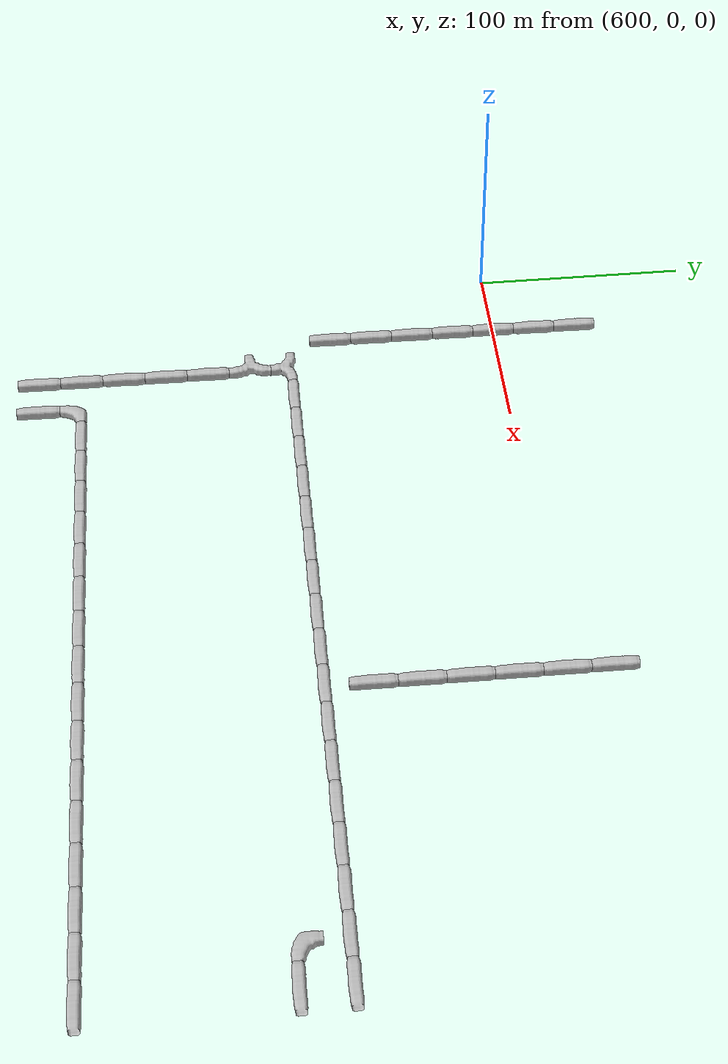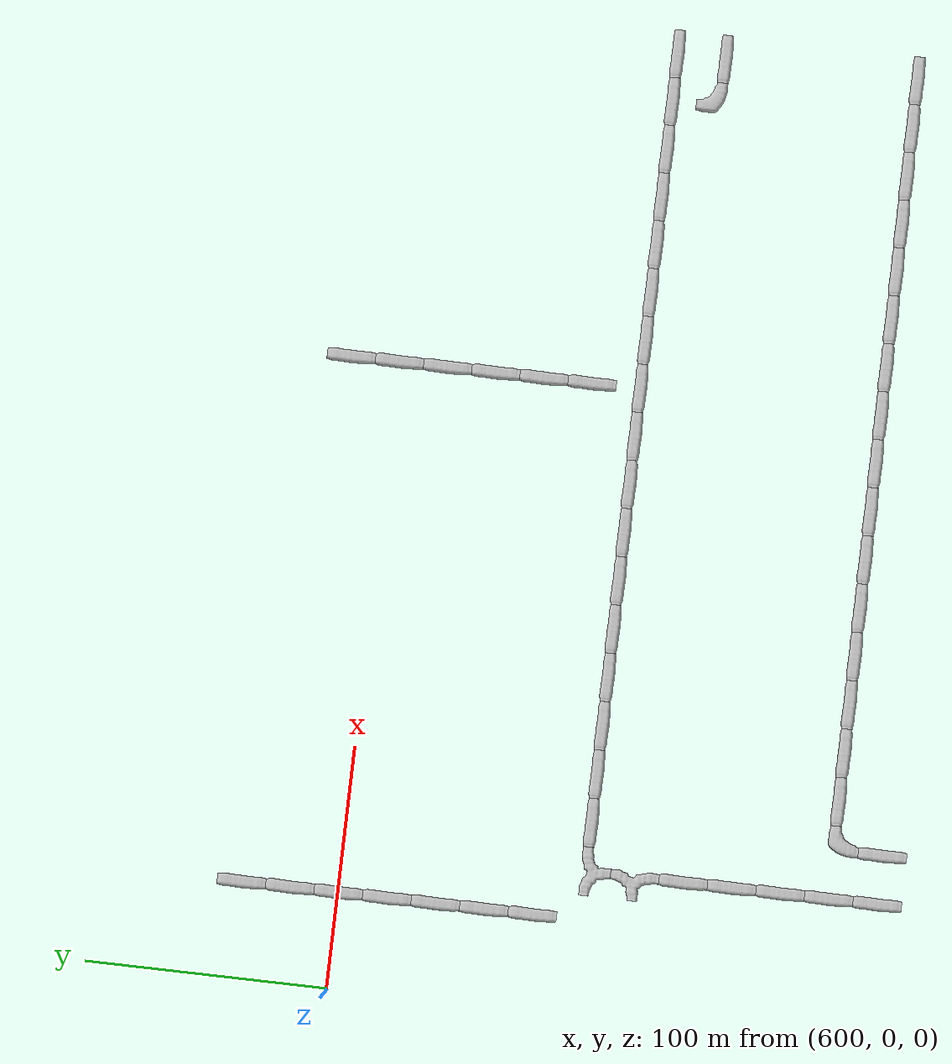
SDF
<sdf version="1.6">
 <world name="cave_32000_32">
  <include>
   <static>true</static>
   <name>cave_33_-6</name>
   <pose>660 -120 0 0 0 1.5707963267948966</pose>
   <uri>model://cave_3way_20m</uri>
  </include>
  <include>
   <static>true</static>
   <name>cave_33_-7</name>
   <pose>660 -140 0 0 0 0.0</pose>
   <uri>model://cave_straight_20m</uri>
  </include>
  <include>
   <static>true</static>
   <name>cave_33_-8</name>
   <pose>660 -160 0 0 0 0.0</pose>
   <uri>model://cave_straight_20m</uri>
  </include>
  <include>
   <static>true</static>
   <name>cave_33_-9</name>
   <pose>660 -180 0 0 0 0.0</pose>
   <uri>model://cave_straight_20m</uri>
  </include>
  <include>
   <static>true</static>
   <name>cave_33_-10</name>
   <pose>660 -200 0 0 0 0.0</pose>
   <uri>model://cave_straight_20m</uri>
  </include>
  <include>
   <static>true</static>
   <name>cave_33_-11</name>
   <pose>660 -220 0 0 0 0.0</pose>
   <uri>model://cave_straight_20m</uri>
  </include>
  <include>
   <static>true</static>
   <name>cave_33_-5</name>
   <pose>660 -100 0 0 0 3.141592653589793</pose>
   <uri>model://cave_3way_20m</uri>
  </include>
  <include>
   <static>true</static>
   <name>cave_34_-5</name>
   <pose>680 -100 0 0 0 1.5707963267948966</pose>
   <uri>model://cave_straight_20m</uri>
  </include>
  <include>
   <static>true</static>
   <name>cave_35_-5</name>
   <pose>700 -100 0 0 0 1.5707963267948966</pose>
   <uri>model://cave_straight_20m</uri>
  </include>
  <include>
   <static>true</static>
   <name>cave_36_-5</name>
   <pose>720 -100 0 0 0 1.5707963267948966</pose>
   <uri>model://cave_straight_20m</uri>
  </include>
  <include>
   <static>true</static>
   <name>cave_37_-5</name>
   <pose>740 -100 0 0 0 1.5707963267948966</pose>
   <uri>model://cave_straight_20m</uri>
  </include>
  <include>
   <static>true</static>
   <name>cave_38_-5</name>
   <pose>760 -100 0 0 0 1.5707963267948966</pose>
   <uri>model://cave_straight_20m</uri>
  </include>
  <include>
   <static>true</static>
   <name>cave_39_-5</name>
   <pose>780 -100 0 0 0 1.5707963267948966</pose>
   <uri>model://cave_straight_20m</uri>
  </include>
  <include>
   <static>true</static>
   <name>cave_40_-5</name>
   <pose>800 -100 0 0 0 1.5707963267948966</pose>
   <uri>model://cave_straight_20m</uri>
  </include>
  <include>
   <static>true</static>
   <name>cave_41_-5</name>
   <pose>820 -100 0 0 0 1.5707963267948966</pose>
   <uri>model://cave_straight_20m</uri>
  </include>
  <include>
   <static>true</static>
   <name>cave_42_-5</name>
   <pose>840 -100 0 0 0 1.5707963267948966</pose>
   <uri>model://cave_straight_20m</uri>
  </include>
  <include>
   <static>true</static>
   <name>cave_43_-5</name>
   <pose>860 -100 0 0 0 1.5707963267948966</pose>
   <uri>model://cave_straight_20m</uri>
  </include>
  <include>
   <static>true</static>
   <name>cave_44_-5</name>
   <pose>880 -100 0 0 0 1.5707963267948966</pose>
   <uri>model://cave_straight_20m</uri>
  </include>
  <include>
   <static>true</static>
   <name>cave_45_-5</name>
   <pose>900 -100 0 0 0 1.5707963267948966</pose>
   <uri>model://cave_straight_20m</uri>
  </include>
  <include>
   <static>true</static>
   <name>cave_46_-5</name>
   <pose>920 -100 0 0 0 1.5707963267948966</pose>
   <uri>model://cave_straight_20m</uri>
  </include>
  <include>
   <static>true</static>
   <name>cave_47_-5</name>
   <pose>940 -100 0 0 0 1.5707963267948966</pose>
   <uri>model://cave_straight_20m</uri>
  </include>
  <include>
   <static>true</static>
   <name>cave_48_-5</name>
   <pose>960 -100 0 0 0 1.5707963267948966</pose>
   <uri>model://cave_straight_20m</uri>
  </include>
  <include>
   <static>true</static>
   <name>cave_49_-5</name>
   <pose>980 -100 0 0 0 1.5707963267948966</pose>
   <uri>model://cave_straight_20m</uri>
  </include>
  <include>
   <static>true</static>
   <name>cave_50_-5</name>
   <pose>1000 -100 0 0 0 1.5707963267948966</pose>
   <uri>model://cave_straight_20m</uri>
  </include>
  <include>
   <static>true</static>
   <name>cave_50_-10</name>
   <pose>1000 -200 0 0 0 1.5707963267948966</pose>
   <uri>model://cave_straight_20m</uri>
  </include>
  <include>
   <static>true</static>
   <name>cave_49_-10</name>
   <pose>980 -200 0 0 0 1.5707963267948966</pose>
   <uri>model://cave_straight_20m</uri>
  </include>
  <include>
   <static>true</static>
   <name>cave_48_-10</name>
   <pose>960 -200 0 0 0 1.5707963267948966</pose>
   <uri>model://cave_straight_20m</uri>
  </include>
  <include>
   <static>true</static>
   <name>cave_47_-10</name>
   <pose>940 -200 0 0 0 1.5707963267948966</pose>
   <uri>model://cave_straight_20m</uri>
  </include>
  <include>
   <static>true</static>
   <name>cave_46_-10</name>
   <pose>920 -200 0 0 0 1.5707963267948966</pose>
   <uri>model://cave_straight_20m</uri>
  </include>
  <include>
   <static>true</static>
   <name>cave_45_-10</name>
   <pose>900 -200 0 0 0 1.5707963267948966</pose>
   <uri>model://cave_straight_20m</uri>
  </include>
  <include>
   <static>true</static>
   <name>cave_44_-10</name>
   <pose>880 -200 0 0 0 1.5707963267948966</pose>
   <uri>model://cave_straight_20m</uri>
  </include>
  <include>
   <static>true</static>
   <name>cave_43_-10</name>
   <pose>860 -200 0 0 0 1.5707963267948966</pose>
   <uri>model://cave_straight_20m</uri>
  </include>
  <include>
   <static>true</static>
   <name>cave_42_-10</name>
   <pose>840 -200 0 0 0 1.5707963267948966</pose>
   <uri>model://cave_straight_20m</uri>
  </include>
  <include>
   <static>true</static>
   <name>cave_41_-10</name>
   <pose>820 -200 0 0 0 1.5707963267948966</pose>
   <uri>model://cave_straight_20m</uri>
  </include>
  <include>
   <static>true</static>
   <name>cave_40_-10</name>
   <pose>800 -200 0 0 0 1.5707963267948966</pose>
   <uri>model://cave_straight_20m</uri>
  </include>
  <include>
   <static>true</static>
   <name>cave_39_-10</name>
   <pose>780 -200 0 0 0 1.5707963267948966</pose>
   <uri>model://cave_straight_20m</uri>
  </include>
  <include>
   <static>true</static>
   <name>cave_38_-10</name>
   <pose>760 -200 0 0 0 1.5707963267948966</pose>
   <uri>model://cave_straight_20m</uri>
  </include>
  <include>
   <static>true</static>
   <name>cave_37_-10</name>
   <pose>740 -200 0 0 0 1.5707963267948966</pose>
   <uri>model://cave_straight_20m</uri>
  </include>
  <include>
   <static>true</static>
   <name>cave_36_-10</name>
   <pose>720 -200 0 0 0 1.5707963267948966</pose>
   <uri>model://cave_straight_20m</uri>
  </include>
  <include>
   <static>true</static>
   <name>cave_35_-10</name>
   <pose>700 -200 0 0 0 1.5707963267948966</pose>
   <uri>model://cave_straight_20m</uri>
  </include>
  <include>
   <static>true</static>
   <name>cave_34_-10</name>
   <pose>680 -200 0 0 0 -1.5707963267948966</pose>
   <uri>model://cave_L_20m</uri>
  </include>
  <include>
   <static>true</static>
   <name>cave_34_-11</name>
   <pose>680 -220 0 0 0 0.0</pose>
   <uri>model://cave_straight_20m</uri>
  </include>
  <include>
   <static>true</static>
   <name>cave_50_-6</name>
   <pose>1000 -120 0 0 0 1.5707963267948966</pose>
   <uri>model://cave_straight_20m</uri>
  </include>
  <include>
   <static>true</static>
   <name>cave_49_-6</name>
   <pose>980 -120 0 0 0 0.0</pose>
   <uri>model://cave_L_20m</uri>
  </include>
  <include>
   <static>true</static>
   <name>cave_32_-4</name>
   <pose>640 -80 0 0 0 0.0</pose>
   <uri>model://cave_straight_20m</uri>
  </include>
  <include>
   <static>true</static>
   <name>cave_32_-3</name>
   <pose>640 -60 0 0 0 0.0</pose>
   <uri>model://cave_straight_20m</uri>
  </include>
  <include>
   <static>true</static>
   <name>cave_32_-2</name>
   <pose>640 -40 0 0 0 0.0</pose>
   <uri>model://cave_straight_20m</uri>
  </include>
  <include>
   <static>true</static>
   <name>cave_32_-1</name>
   <pose>640 -20 0 0 0 0.0</pose>
   <uri>model://cave_straight_20m</uri>
  </include>
  <include>
   <static>true</static>
   <name>cave_32_0</name>
   <pose>640 0 0 0 0 0.0</pose>
   <uri>model://cave_straight_20m</uri>
  </include>
  <include>
   <static>true</static>
   <name>cave_32_1</name>
   <pose>640 20 0 0 0 0.0</pose>
   <uri>model://cave_straight_20m</uri>
  </include>
  <include>
   <static>true</static>
   <name>cave_32_2</name>
   <pose>640 40 0 0 0 0.0</pose>
   <uri>model://cave_straight_20m</uri>
  </include>
  <include>
   <static>true</static>
   <name>cave_43_1</name>
   <pose>860 20 0 0 0 0.0</pose>
   <uri>model://cave_straight_20m</uri>
  </include>
  <include>
   <static>true</static>
   <name>cave_43_0</name>
   <pose>860 0 0 0 0 0.0</pose>
   <uri>model://cave_straight_20m</uri>
  </include>
  <include>
   <static>true</static>
   <name>cave_43_-1</name>
   <pose>860 -20 0 0 0 0.0</pose>
   <uri>model://cave_straight_20m</uri>
  </include>
  <include>
   <static>true</static>
   <name>cave_43_-2</name>
   <pose>860 -40 0 0 0 0.0</pose>
   <uri>model://cave_straight_20m</uri>
  </include>
  <include>
   <static>true</static>
   <name>cave_43_-3</name>
   <pose>860 -60 0 0 0 0.0</pose>
   <uri>model://cave_straight_20m</uri>
  </include>
  <include>
   <static>true</static>
   <name>cave_43_-4</name>
   <pose>860 -80 0 0 0 0.0</pose>
   <uri>model://cave_straight_20m</uri>
  </include>
 </world>
</sdf>
